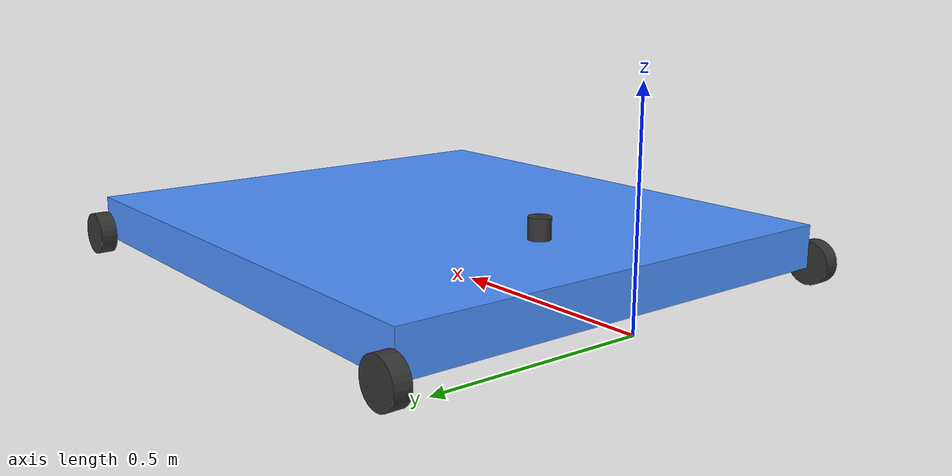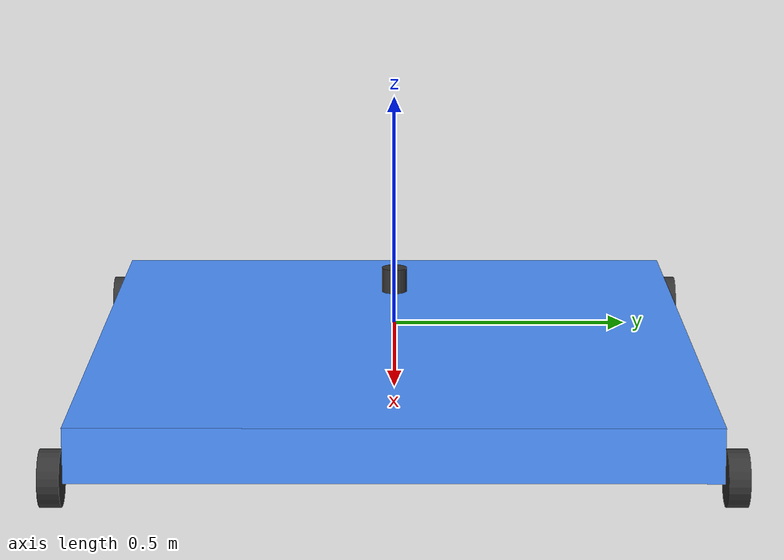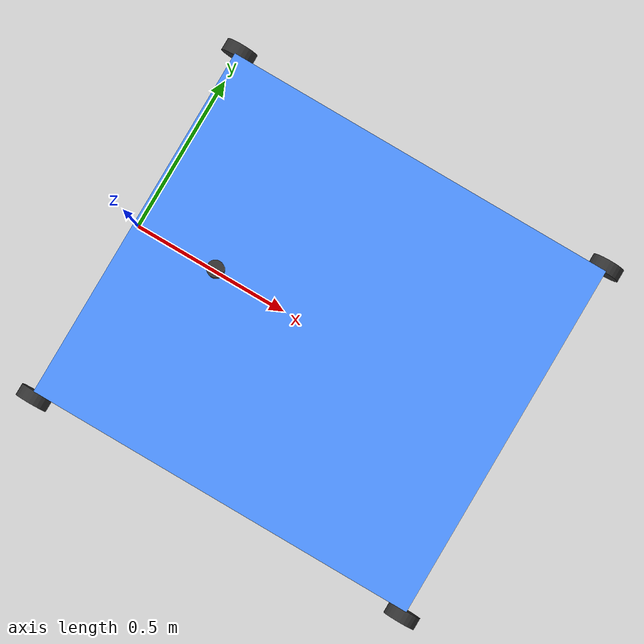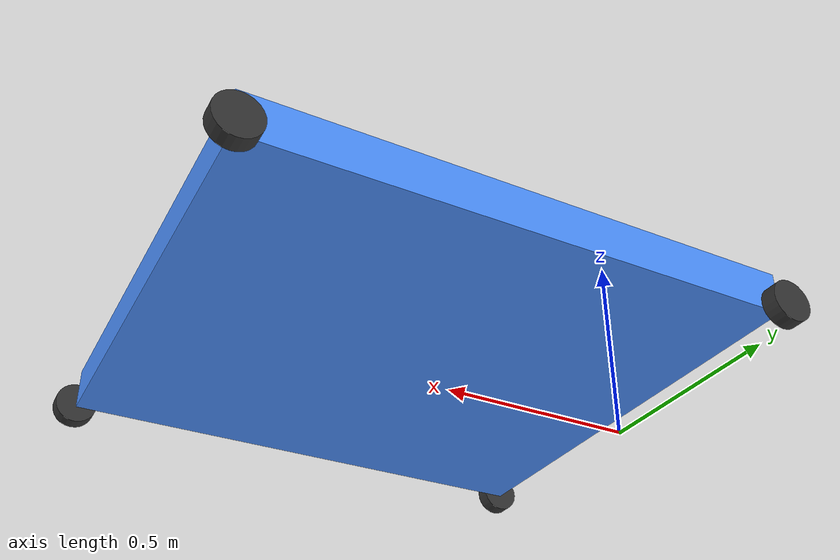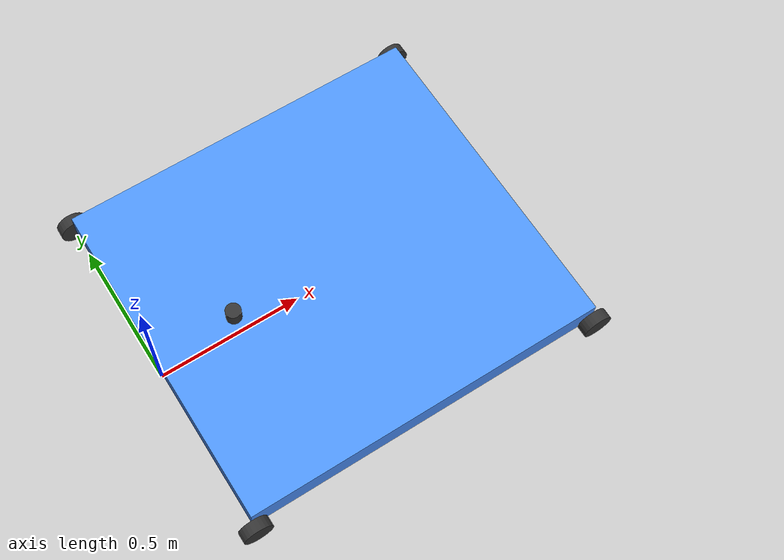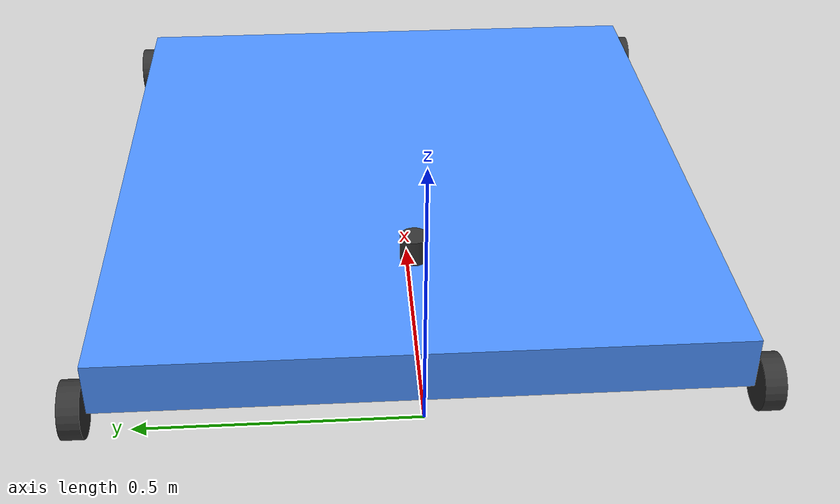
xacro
<?xml version="1.0"?>
<!-- A model of the F1TENTH racecar for rviz -->
<robot xmlns:xacro="http://www.ros.org/wiki/xacro" name="racecar">

  <xacro:property name="wheelbase" value="1.25" />
  <xacro:property name="track_width" value="1.18" />
  <xacro:property name="height" value="0.1" />
  <xacro:property name="ground_offset" value="0.04" />
  <xacro:property name="wheel_radius" value="0.0508" />
  <xacro:property name="wheel_length" value="0.0381" />
  <xacro:property name="body_width" value="${track_width-wheel_length}" />
  <xacro:property name="laser_distance_from_base_link" value="0.275" />
  <xacro:property name="laser_height" value="0.05" />
  <xacro:property name="laser_radius" value="0.026" />
  <xacro:property name="car_name" value="ego_racecar" />

  <material name="black">
    <color rgba="0.2 0.2 0.2 1.0"/>
  </material>

  <material name="blue">
    <color rgba="0.3 0.57 1.0 1.0"/>
  </material>

  <material name="red">
    <color rgba="0.9 0.2 0.2 1.0"/>
  </material>

  <link name="${car_name}/base_link">
    <visual>
      <origin xyz="${wheelbase/2} 0 ${ground_offset+height/2}"/>
      <geometry>
        <box size="${wheelbase} ${body_width} ${height}"/>
      </geometry>
      <material name="blue"/>
    </visual>
  </link>

  <joint name="base_to_laser_model" type="fixed">
    <parent link="${car_name}/base_link"/>
    <child link="${car_name}/laser_model"/>
    <origin xyz="${laser_distance_from_base_link} 0 ${ground_offset+height+(laser_height/2)}"/>
  </joint>

  <link name="${car_name}/laser_model">
    <visual>
      <geometry>
        <cylinder radius="${laser_radius}" length="${laser_height}"/>
      </geometry>
      <material name="black"/>
    </visual>
  </link>

  <joint name="base_to_back_left_wheel" type="continuous">
    <parent link="${car_name}/base_link"/>
    <child link="${car_name}/back_left_wheel"/>
    <origin xyz="0 ${track_width/2} ${wheel_radius}"/>
    <axis xyz="0 1 0"/>
  </joint>

  <link name="${car_name}/back_left_wheel">
    <visual>
      <geometry>
        <cylinder radius="${wheel_radius}" length="${wheel_length}"/>
      </geometry>
      <material name="black"/>
      <origin rpy="${pi/2} 0 0"/>
    </visual>
  </link>

  <joint name="base_to_back_right_wheel" type="continuous">
    <parent link="${car_name}/base_link"/>
    <child link="${car_name}/back_right_wheel"/>
    <origin xyz="0 ${-track_width/2} ${wheel_radius}"/>
    <axis xyz="0 1 0"/>
  </joint>

  <link name="${car_name}/back_right_wheel">
    <visual>
      <geometry>
        <cylinder radius="${wheel_radius}" length="${wheel_length}"/>
      </geometry>
      <material name="black"/>
      <origin rpy="${pi/2} 0 0"/>
    </visual>
  </link>

  <joint name="base_to_front_left_hinge" type="revolute">
    <parent link="${car_name}/base_link"/>
    <child link="${car_name}/front_left_hinge"/>
    <origin xyz="${wheelbase} ${track_width/2} ${wheel_radius}"/>
    <axis xyz="0 0 1"/>
    <limit lower="-0.610865" upper="0.610865" effort="10.0" velocity="10.0"/>
  </joint>

  <link name="${car_name}/front_left_hinge"/>

  <joint name="front_left_hinge_to_wheel" type="continuous">
    <parent link="${car_name}/front_left_hinge"/>
    <child link="${car_name}/front_left_wheel"/>
    <axis xyz="0 1 0"/>
  </joint>

  <link name="${car_name}/front_left_wheel">
    <visual>
      <geometry>
        <cylinder radius="${wheel_radius}" length="${wheel_length}"/>
      </geometry>
      <material name="black"/>
      <origin rpy="${pi/2} 0 0"/>
    </visual>
  </link>

  <joint name="base_to_front_right_hinge" type="revolute">
    <parent link="${car_name}/base_link"/>
    <child link="${car_name}/front_right_hinge"/>
    <origin xyz="${wheelbase} ${-track_width/2} ${wheel_radius}"/>
    <axis xyz="0 0 1"/>
    <limit lower="-0.610865" upper="0.610865" effort="10.0" velocity="10.0"/>
  </joint>

  <link name="${car_name}/front_right_hinge"/>

  <joint name="front_right_hinge_to_wheel" type="continuous">
    <parent link="${car_name}/front_right_hinge"/>
    <child link="${car_name}/front_right_wheel"/>
    <axis xyz="0 1 0"/>
  </joint>

  <link name="${car_name}/front_right_wheel">
    <visual>
      <geometry>
        <cylinder radius="${wheel_radius}" length="${wheel_length}"/>
      </geometry>
      <material name="black"/>
      <origin rpy="${pi/2} 0 0"/>
    </visual>
  </link>

</robot>
